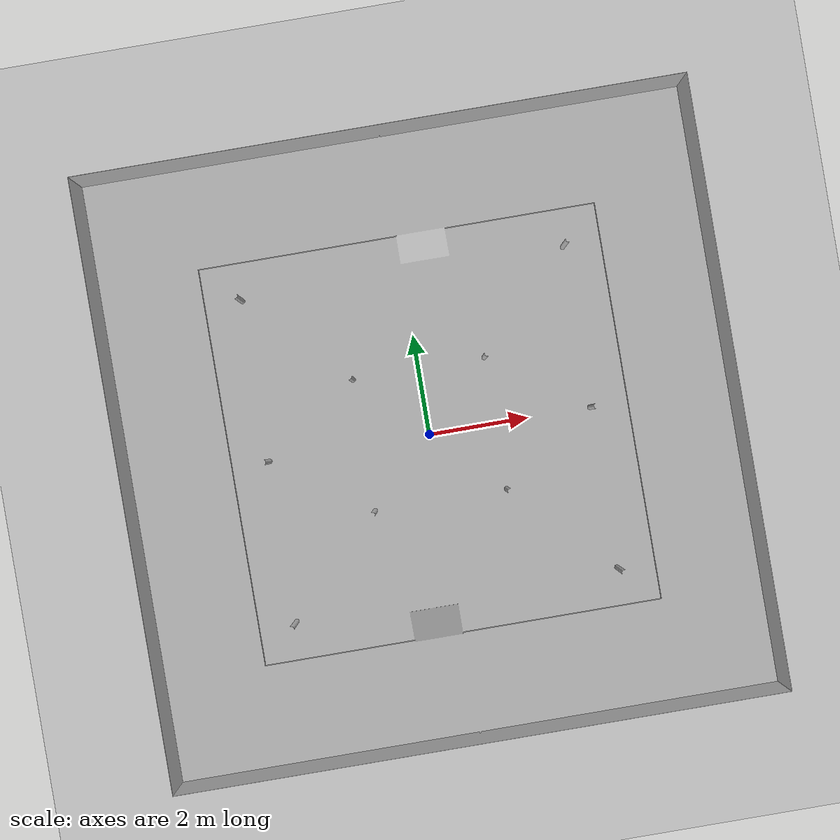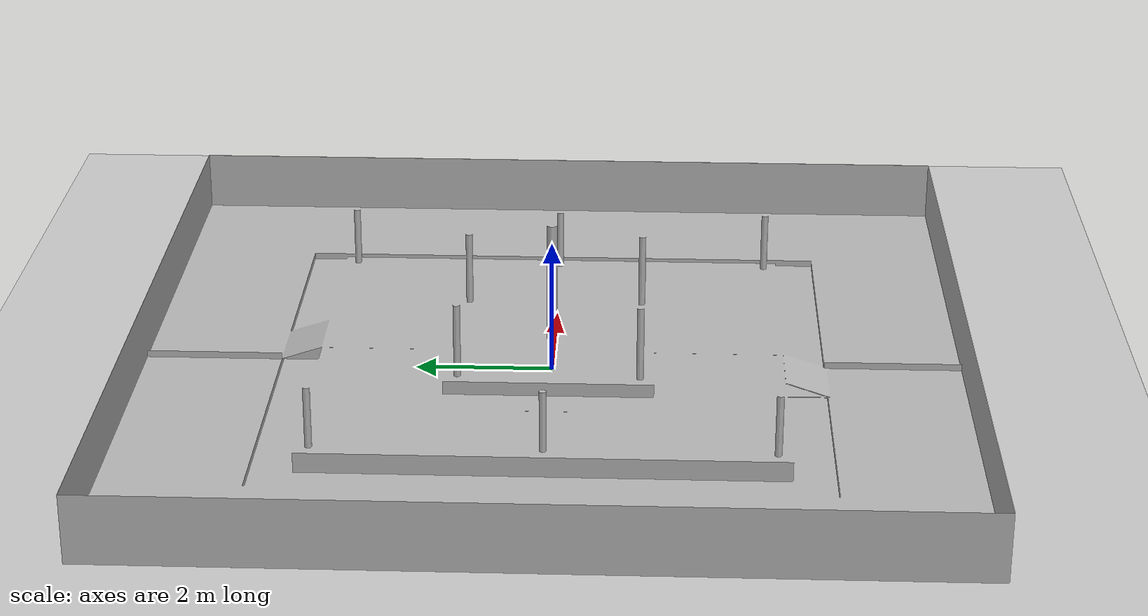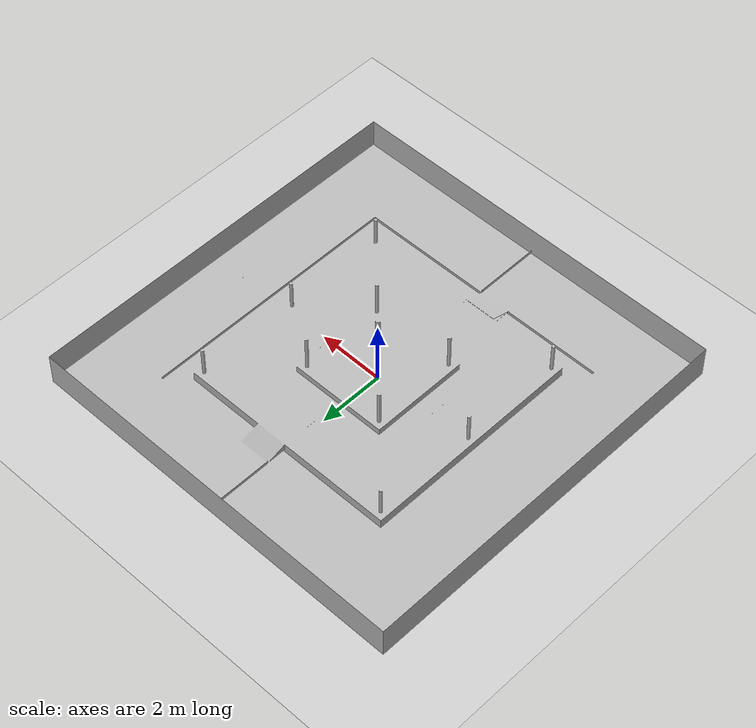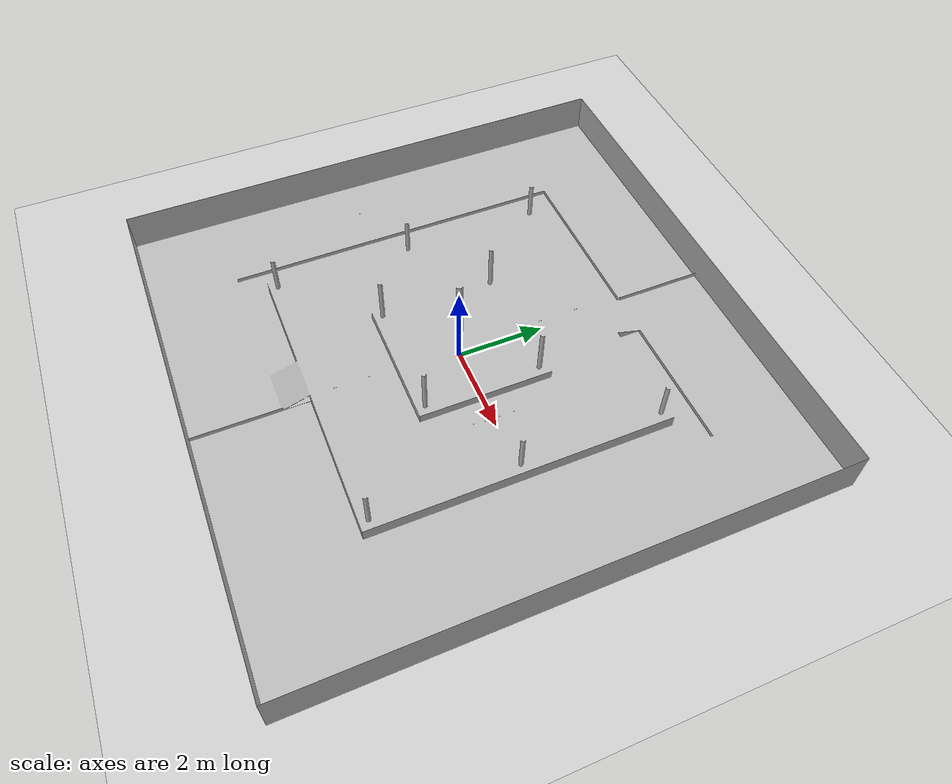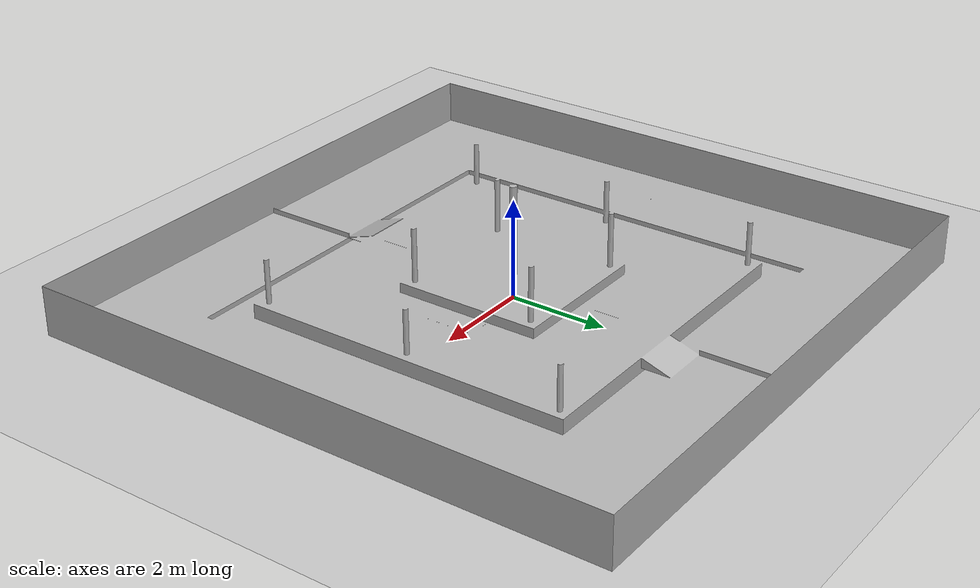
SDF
<sdf version="1.6">
 <world name="default">
  <light name="sun" type="directional">
   <pose>0 0 10 0 -0 0</pose>
   <diffuse>0.8 0.8 0.8 1</diffuse>
   <specular>0.2 0.2 0.2 1</specular>
   <attenuation>
    <range>1000</range>
    <constant>0.9</constant>
    <linear>0.01</linear>
    <quadratic>0.001</quadratic>
   </attenuation>
   <direction>-0.5 0.1 -0.9</direction>
  </light>
  <model name="ground_plane">
   <static>1</static>
   <link name="link">
    <collision name="collision">
     <geometry><plane><normal>0 0 1</normal><size>100 100</size></plane></geometry>
     <surface><friction><ode><mu>100</mu><mu2>50</mu2></ode></friction></surface>
    </collision>
    <visual name="visual">
     <cast_shadows>0</cast_shadows>
     <geometry><plane><normal>0 0 1</normal><size>100 100</size></plane></geometry>
     <material>
      <script><uri>file://media/materials/scripts/gazebo.material</uri><name>Gazebo/Grey</name></script>
     </material>
    </visual>
   </link>
  </model>
  <gravity>0 0 -9.8</gravity>
  <magnetic_field>6e-06 2.3e-05 -4.2e-05</magnetic_field>
  <atmosphere type="adiabatic"/>
  <physics name="default_physics" default="0" type="ode">
   <max_step_size>0.001</max_step_size>
   <real_time_factor>1</real_time_factor>
   <real_time_update_rate>1000</real_time_update_rate>
  </physics>
  <scene><ambient>0.4 0.4 0.4 1</ambient><background>0.7 0.7 0.7 1</background><shadows>1</shadows></scene>
  <audio><device>default</device></audio>
  <spherical_coordinates>
   <surface_model>EARTH_WGS84</surface_model>
   <latitude_deg>0</latitude_deg>
   <longitude_deg>0</longitude_deg>
   <elevation>0</elevation>
   <heading_deg>0</heading_deg>
  </spherical_coordinates>
  <model name="wtr_map">
   <link name="base_link">
    <inertial>
     <pose>0.000931 0.006825 0.142493 0 -0 0</pose>
     <mass>24189.8</mass>
     <inertia>
      <ixx>201242</ixx>
      <ixy>-22.178</ixy>
      <ixz>0.0600351</ixz>
      <iyy>201034</iyy>
      <iyz>0.581279</iyz>
      <izz>401341</izz>
     </inertia>
    </inertial>
    <collision name="base_link_collision">
     <geometry>
      <mesh><scale>1 1 1</scale><uri>/home/ubuntu/wtr_upmachine_ws/src/wtr_map/meshes/base_link.stl</uri></mesh>
     </geometry>
    </collision>
    <visual name="base_link_visual">
     <geometry>
      <mesh><scale>1 1 1</scale><uri>/home/ubuntu/wtr_upmachine_ws/src/wtr_map/meshes/base_link.stl</uri></mesh>
     </geometry>
    </visual>
   </link>
  </model>
 </world>
</sdf>
